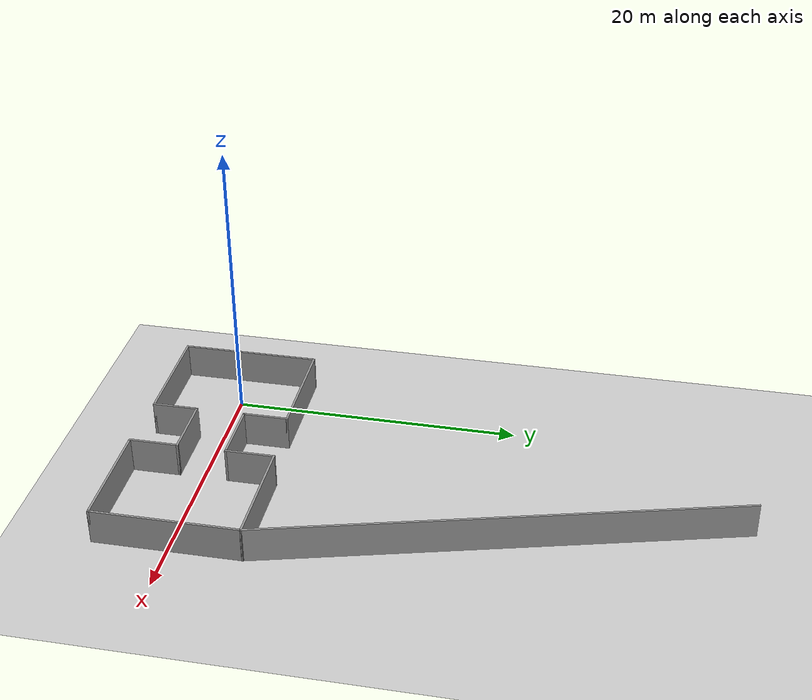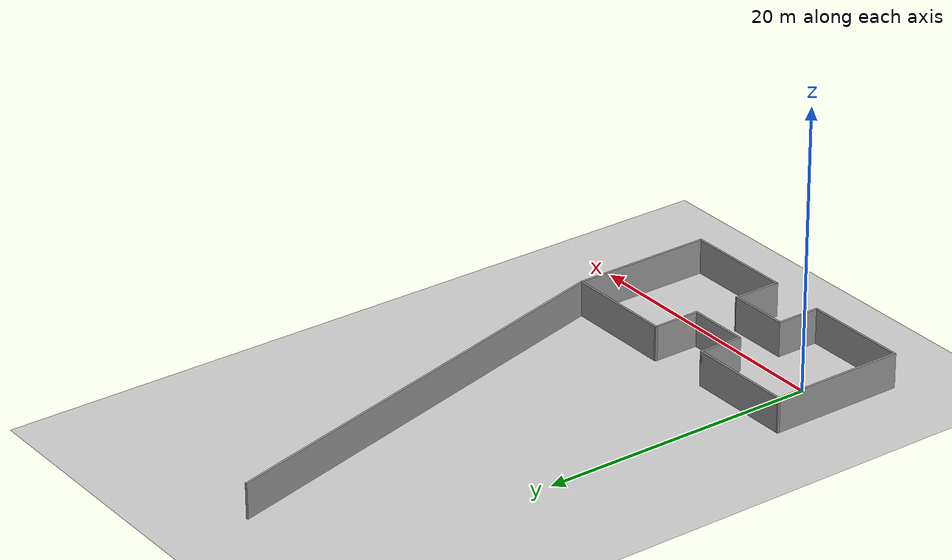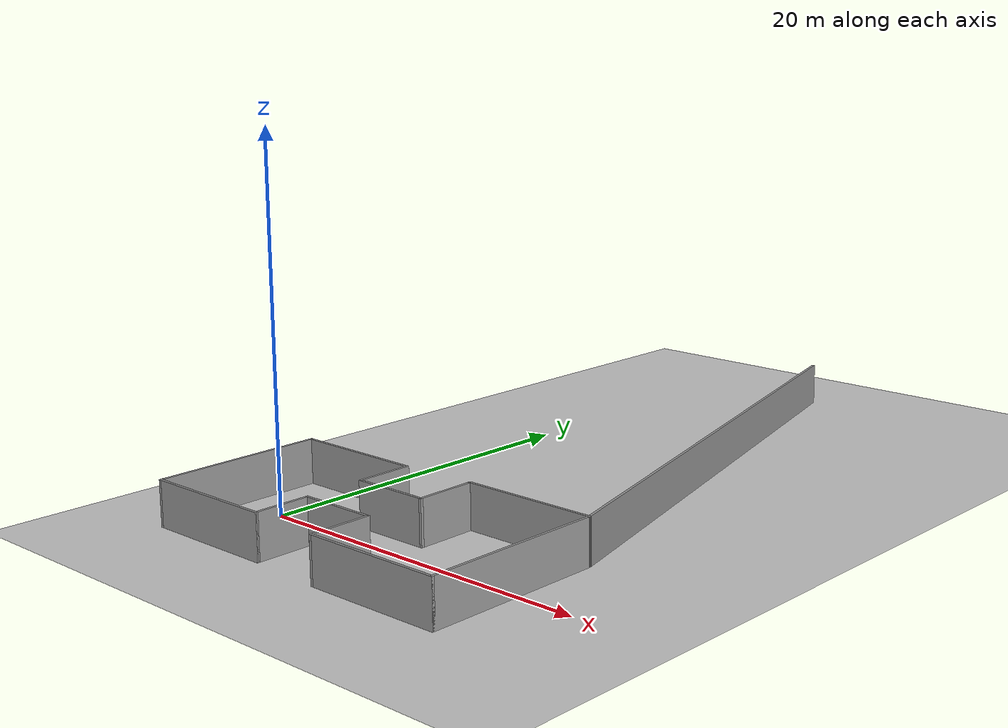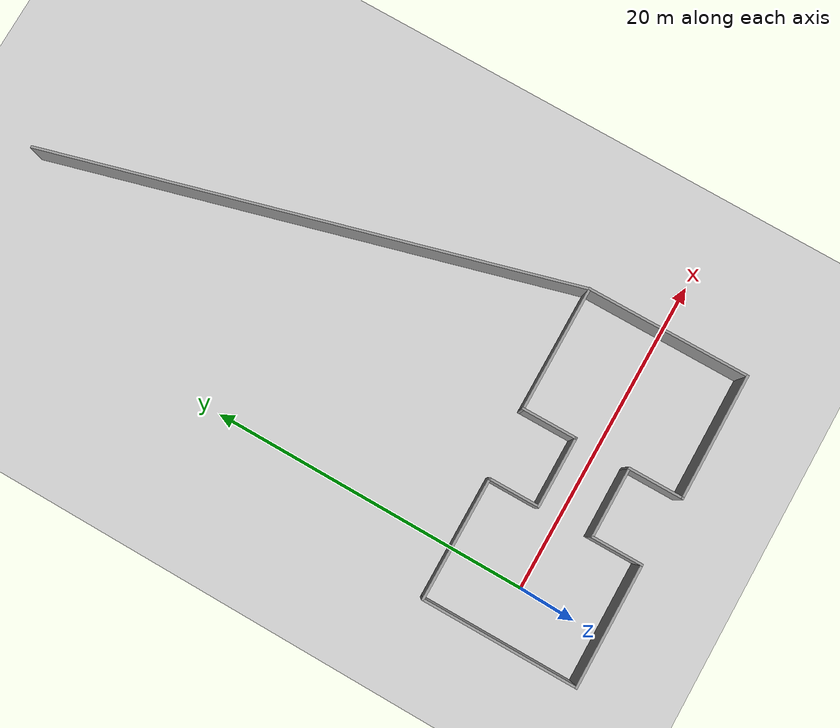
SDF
<sdf version="1.6">
 <world name="default">
  <light name="sun" type="directional">
   <pose>0 0 10 0 -0 0</pose>
   <diffuse>0.8 0.8 0.8 1</diffuse>
   <specular>0.2 0.2 0.2 1</specular>
   <attenuation>
    <range>1000</range>
    <constant>0.9</constant>
    <linear>0.01</linear>
    <quadratic>0.001</quadratic>
   </attenuation>
   <direction>-0.5 0.1 -0.9</direction>
  </light>
  <model name="ground_plane">
   <static>1</static>
   <link name="link">
    <collision name="collision">
     <geometry><plane><normal>0 0 1</normal><size>100 100</size></plane></geometry>
     <surface><friction><ode><mu>100</mu><mu2>50</mu2></ode></friction></surface>
    </collision>
    <visual name="visual">
     <cast_shadows>0</cast_shadows>
     <geometry><plane><normal>0 0 1</normal><size>100 100</size></plane></geometry>
     <material>
      <script><uri>file://media/materials/scripts/gazebo.material</uri><name>Gazebo/Grey</name></script>
     </material>
    </visual>
   </link>
  </model>
  <gravity>0 0 -9.8</gravity>
  <magnetic_field>6e-06 2.3e-05 -4.2e-05</magnetic_field>
  <atmosphere type="adiabatic"/>
  <physics name="default_physics" default="0" type="ode">
   <max_step_size>0.001</max_step_size>
   <real_time_factor>1</real_time_factor>
   <real_time_update_rate>1000</real_time_update_rate>
  </physics>
  <scene><ambient>0.4 0.4 0.4 1</ambient><background>0.7 0.7 0.7 1</background><shadows>1</shadows></scene>
  <audio><device>default</device></audio>
  <spherical_coordinates>
   <surface_model>EARTH_WGS84</surface_model>
   <latitude_deg>0</latitude_deg>
   <longitude_deg>0</longitude_deg>
   <elevation>0</elevation>
   <heading_deg>0</heading_deg>
  </spherical_coordinates>
  <model name="Untitled">
   <pose>6.66595 15.9195 0 0 0 -1.56588</pose>
   <link name="Wall_0">
    <collision name="Wall_0_Collision">
     <geometry><box><size>10.25 0.15 2.5</size></box></geometry>
     <pose>0 0 1.25 0 -0 0</pose>
    </collision>
    <visual name="Wall_0_Visual">
     <pose>0 0 1.25 0 -0 0</pose>
     <geometry><box><size>10.25 0.15 2.5</size></box></geometry>
     <material>
      <script><uri>file://media/materials/scripts/gazebo.material</uri><name>Gazebo/Grey</name></script>
      <ambient>1 1 1 1</ambient>
     </material>
     <meta><layer>0</layer></meta>
    </visual>
    <pose>15.9945 9.89157 0 0 -0 0</pose>
   </link>
   <link name="Wall_1">
    <collision name="Wall_1_Collision">
     <geometry><box><size>8 0.15 2.5</size></box></geometry>
     <pose>0 0 1.25 0 -0 0</pose>
    </collision>
    <visual name="Wall_1_Visual">
     <pose>0 0 1.25 0 -0 0</pose>
     <geometry><box><size>8 0.15 2.5</size></box></geometry>
     <material>
      <script><uri>file://media/materials/scripts/gazebo.material</uri><name>Gazebo/Grey</name></script>
      <ambient>1 1 1 1</ambient>
     </material>
     <meta><layer>0</layer></meta>
    </visual>
    <pose>21.0445 5.96657 0 0 -0 -1.5708</pose>
   </link>
   <link name="Wall_10">
    <collision name="Wall_10_Collision">
     <geometry><box><size>7.75 0.15 2.5</size></box></geometry>
     <pose>0 0 1.25 0 -0 0</pose>
    </collision>
    <visual name="Wall_10_Visual">
     <pose>0 0 1.25 0 -0 0</pose>
     <geometry><box><size>7.75 0.15 2.5</size></box></geometry>
     <material>
      <script><uri>file://media/materials/scripts/gazebo.material</uri><name>Gazebo/Grey</name></script>
      <ambient>1 1 1 1</ambient>
     </material>
     <meta><layer>0</layer></meta>
    </visual>
    <pose>11.1945 -6.10843 0 0 -0 1.5708</pose>
   </link>
   <link name="Wall_11">
    <collision name="Wall_11_Collision">
     <geometry><box><size>3.25 0.15 2.5</size></box></geometry>
     <pose>0 0 1.25 0 -0 0</pose>
    </collision>
    <visual name="Wall_11_Visual">
     <pose>0 0 1.25 0 -0 0</pose>
     <geometry><box><size>3.25 0.15 2.5</size></box></geometry>
     <material>
      <script><uri>file://media/materials/scripts/gazebo.material</uri><name>Gazebo/Grey</name></script>
      <ambient>1 1 1 1</ambient>
     </material>
     <meta><layer>0</layer></meta>
    </visual>
    <pose>12.7445 -2.30843 0 0 -0 0</pose>
   </link>
   <link name="Wall_12">
    <collision name="Wall_12_Collision">
     <geometry><box><size>4.5 0.15 2.5</size></box></geometry>
     <pose>0 0 1.25 0 -0 0</pose>
    </collision>
    <visual name="Wall_12_Visual">
     <pose>0 0 1.25 0 -0 0</pose>
     <geometry><box><size>4.5 0.15 2.5</size></box></geometry>
     <material>
      <script><uri>file://media/materials/scripts/gazebo.material</uri><name>Gazebo/Grey</name></script>
      <ambient>1 1 1 1</ambient>
     </material>
     <meta><layer>0</layer></meta>
    </visual>
    <pose>14.2945 -0.133428 0 0 -0 1.5708</pose>
   </link>
   <link name="Wall_13">
    <collision name="Wall_13_Collision">
     <geometry><box><size>3.5 0.15 2.5</size></box></geometry>
     <pose>0 0 1.25 0 -0 0</pose>
    </collision>
    <visual name="Wall_13_Visual">
     <pose>0 0 1.25 0 -0 0</pose>
     <geometry><box><size>3.5 0.15 2.5</size></box></geometry>
     <material>
      <script><uri>file://media/materials/scripts/gazebo.material</uri><name>Gazebo/Grey</name></script>
      <ambient>1 1 1 1</ambient>
     </material>
     <meta><layer>0</layer></meta>
    </visual>
    <pose>12.6195 2.04157 0 0 -0 3.14159</pose>
   </link>
   <link name="Wall_15">
    <collision name="Wall_15_Collision">
     <geometry><box><size>8 0.15 2.5</size></box></geometry>
     <pose>0 0 1.25 0 -0 0</pose>
    </collision>
    <visual name="Wall_15_Visual">
     <pose>0 0 1.25 0 -0 0</pose>
     <geometry><box><size>8 0.15 2.5</size></box></geometry>
     <material>
      <script><uri>file://media/materials/scripts/gazebo.material</uri><name>Gazebo/Grey</name></script>
      <ambient>1 1 1 1</ambient>
     </material>
     <meta><layer>0</layer></meta>
    </visual>
    <pose>10.9445 5.96657 0 0 -0 1.5708</pose>
   </link>
   <link name="Wall_16">
    <collision name="Wall_16_Collision">
     <geometry><box><size>33.25 0.15 2.5</size></box></geometry>
     <pose>0 0 1.25 0 -0 0</pose>
    </collision>
    <visual name="Wall_16_Visual">
     <pose>0 0 1.25 0 -0 0</pose>
     <geometry><box><size>33.25 0.15 2.5</size></box></geometry>
     <material>
      <script><uri>file://media/materials/scripts/gazebo.material</uri><name>Gazebo/Grey</name></script>
      <ambient>0 0 0 1</ambient>
     </material>
     <meta><layer>0</layer></meta>
    </visual>
    <pose>-5.04157 5.60812 0 0 -0 -2.87979</pose>
   </link>
   <link name="Wall_2">
    <collision name="Wall_2_Collision">
     <geometry><box><size>3.5 0.15 2.5</size></box></geometry>
     <pose>0 0 1.25 0 -0 0</pose>
    </collision>
    <visual name="Wall_2_Visual">
     <pose>0 0 1.25 0 -0 0</pose>
     <geometry><box><size>3.5 0.15 2.5</size></box></geometry>
     <material>
      <script><uri>file://media/materials/scripts/gazebo.material</uri><name>Gazebo/Grey</name></script>
      <ambient>1 1 1 1</ambient>
     </material>
     <meta><layer>0</layer></meta>
    </visual>
    <pose>19.3695 2.04157 0 0 -0 3.14159</pose>
   </link>
   <link name="Wall_4">
    <collision name="Wall_4_Collision">
     <geometry><box><size>4.5 0.15 2.5</size></box></geometry>
     <pose>0 0 1.25 0 -0 0</pose>
    </collision>
    <visual name="Wall_4_Visual">
     <pose>0 0 1.25 0 -0 0</pose>
     <geometry><box><size>4.5 0.15 2.5</size></box></geometry>
     <material>
      <script><uri>file://media/materials/scripts/gazebo.material</uri><name>Gazebo/Grey</name></script>
      <ambient>1 1 1 1</ambient>
     </material>
     <meta><layer>0</layer></meta>
    </visual>
    <pose>17.6945 -0.133428 0 0 -0 -1.5708</pose>
   </link>
   <link name="Wall_5">
    <collision name="Wall_5_Collision">
     <geometry><box><size>3.25 0.15 2.5</size></box></geometry>
     <pose>0 0 1.25 0 -0 0</pose>
    </collision>
    <visual name="Wall_5_Visual">
     <pose>0 0 1.25 0 -0 0</pose>
     <geometry><box><size>3.25 0.15 2.5</size></box></geometry>
     <material>
      <script><uri>file://media/materials/scripts/gazebo.material</uri><name>Gazebo/Grey</name></script>
      <ambient>1 1 1 1</ambient>
     </material>
     <meta><layer>0</layer></meta>
    </visual>
    <pose>19.2445 -2.30843 0 0 -0 0</pose>
   </link>
   <link name="Wall_6">
    <collision name="Wall_6_Collision">
     <geometry><box><size>7.75 0.15 2.5</size></box></geometry>
     <pose>0 0 1.25 0 -0 0</pose>
    </collision>
    <visual name="Wall_6_Visual">
     <pose>0 0 1.25 0 -0 0</pose>
     <geometry><box><size>7.75 0.15 2.5</size></box></geometry>
     <material>
      <script><uri>file://media/materials/scripts/gazebo.material</uri><name>Gazebo/Grey</name></script>
      <ambient>1 1 1 1</ambient>
     </material>
     <meta><layer>0</layer></meta>
    </visual>
    <pose>20.7945 -6.10843 0 0 -0 -1.5708</pose>
   </link>
   <link name="Wall_8">
    <collision name="Wall_8_Collision">
     <geometry><box><size>9.75 0.15 2.5</size></box></geometry>
     <pose>0 0 1.25 0 -0 0</pose>
    </collision>
    <visual name="Wall_8_Visual">
     <pose>0 0 1.25 0 -0 0</pose>
     <geometry><box><size>9.75 0.15 2.5</size></box></geometry>
     <material>
      <script><uri>file://media/materials/scripts/gazebo.material</uri><name>Gazebo/Grey</name></script>
      <ambient>1 1 1 1</ambient>
     </material>
     <meta><layer>0</layer></meta>
    </visual>
    <pose>15.9945 -9.90843 0 0 -0 3.14159</pose>
   </link>
   <static>1</static>
  </model>
 </world>
</sdf>
